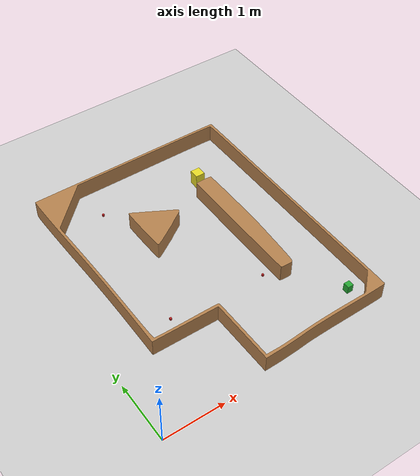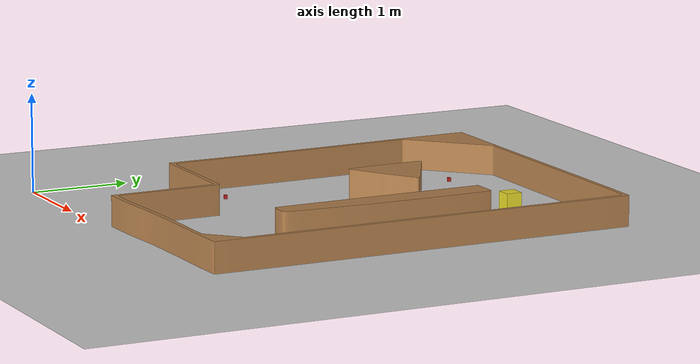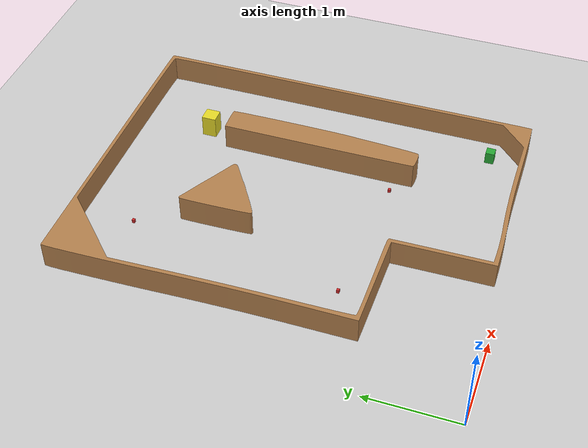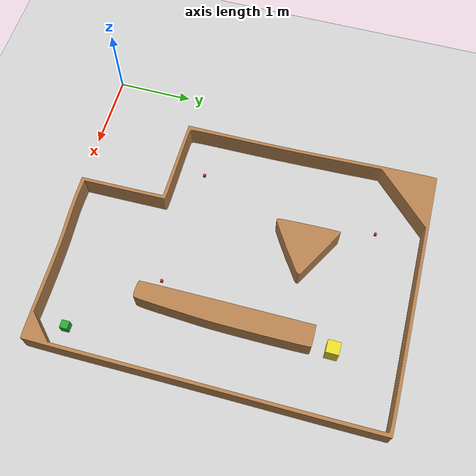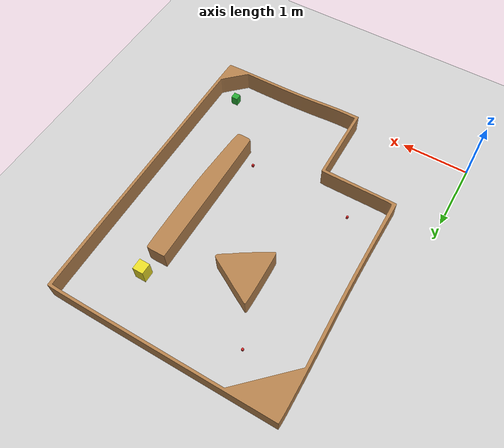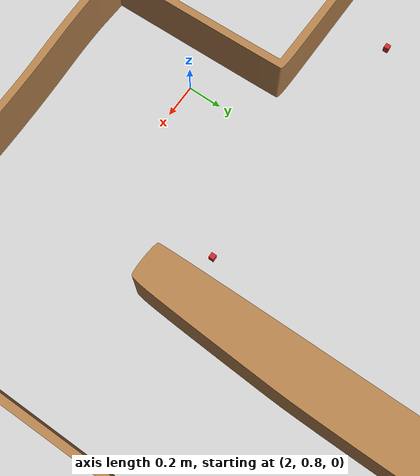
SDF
<sdf version='1.6'>
  <world name='default'>
    <!-- A global light source -->
    <include>
      <uri>model://sun</uri>
    </include>

    <!-- A ground plane -->
    <include>
      <uri>model://ground_plane</uri>
    </include>

    <physics type="ode">
      <real_time_update_rate>1000.0</real_time_update_rate>
      <max_step_size>0.001</max_step_size>
      <real_time_factor>1</real_time_factor>
      <ode>
        <solver>
          <type>quick</type>
          <iters>150</iters>
          <precon_iters>0</precon_iters>
          <sor>1.400000</sor>
          <use_dynamic_moi_rescaling>1</use_dynamic_moi_rescaling>
        </solver>
        <constraints>
          <cfm>0.00001</cfm>
          <erp>0.2</erp>
          <contact_max_correcting_vel>2000.000000</contact_max_correcting_vel>
          <contact_surface_layer>0.01000</contact_surface_layer>
        </constraints>
      </ode>
    </physics>

    <!-- Load world -->
    <include>
      <uri>model://battleground</uri>
      <pose>2.1 0.65 0.0 0 0 0</pose>
    </include>

    <!-- Map x offset 3.92m -->
    <!-- Map y offset 4.48m -->

    <include>
      <uri>model://button</uri>
      <pose>3.62 0.55 0.07 0 0 0</pose>
    </include>

    <include>
      <uri>model://box</uri>
      <pose>3.09 3.705 0.13 0 0 0</pose>
    </include>

    <include>
      <uri>model://rock</uri>
      <pose>1.42 3.93 0.03 0 0 0</pose>
    </include>

    <include>
      <uri>model://rock</uri>
      <pose>2.75 1.48 0.03 0 0 0</pose>
    </include>

    <include>
      <uri>model://rock</uri>
      <pose>1.16 1.57 0.03 0 0 0</pose>
    </include>

    <scene>
      <ambient>0.4 0.4 0.4 1</ambient>
      <background>0.7 0.7 0.7 1</background>
      <shadows>true</shadows>
    </scene>

    <gui fullscreen='0'>
      <camera name='user_camera'>
        <pose>0.0 0.0 17.0 0 1.5708 0</pose>
        <view_controller>orbit</view_controller>
      </camera>
    </gui>
  </world>
</sdf>

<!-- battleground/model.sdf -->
<sdf version='1.6'>
  <model name='battleground'>
    <link name='link_0'>
      <pose frame=''>0 0 0 0 -0 0</pose>
      <inertial>
        <mass>1</mass>
        <inertia>
          <ixx>0.166667</ixx>
          <ixy>0</ixy>
          <ixz>0</ixz>
          <iyy>0.166667</iyy>
          <iyz>0</iyz>
          <izz>0.166667</izz>
        </inertia>
      </inertial>
      <visual name='visual'>
        <pose frame=''>0 0 0 0 -0 0</pose>
        <geometry>
          <mesh>
            <uri>model://battleground/meshes/battleground.dae</uri>
            <scale>1 1 1</scale>
          </mesh>
        </geometry>
        <material>
          <lighting>1</lighting>
          <script>
            <uri>file://media/materials/scripts/gazebo.material</uri>
            <name>Gazebo/Wood</name>
          </script>
        </material>
        <cast_shadows>1</cast_shadows>
        <transparency>0</transparency>
      </visual>
      <collision name='collision'>
        <laser_retro>0</laser_retro>
        <max_contacts>10</max_contacts>
        <pose frame=''>0 0 0 0 -0 0</pose>
        <geometry>
          <mesh>
            <uri>model://battleground/meshes/battleground.dae</uri>
          </mesh>
        </geometry>
        <surface>
          <friction>
            <ode>
              <mu>1</mu>
              <mu2>1</mu2>
              <fdir1>0 0 0</fdir1>
              <slip1>0</slip1>
              <slip2>0</slip2>
            </ode>
            <torsional>
              <coefficient>1</coefficient>
              <patch_radius>0</patch_radius>
              <surface_radius>0</surface_radius>
              <use_patch_radius>1</use_patch_radius>
              <ode>
                <slip>0</slip>
              </ode>
            </torsional>
          </friction>
          <bounce>
            <restitution_coefficient>0</restitution_coefficient>
            <threshold>1e+06</threshold>
          </bounce>
          <contact>
            <collide_without_contact>0</collide_without_contact>
            <collide_without_contact_bitmask>1</collide_without_contact_bitmask>
            <collide_bitmask>1</collide_bitmask>
            <ode>
              <soft_cfm>0</soft_cfm>
              <soft_erp>0.2</soft_erp>
              <kp>1e+13</kp>
              <kd>1</kd>
              <max_vel>0.01</max_vel>
              <min_depth>0</min_depth>
            </ode>
            <bullet>
              <split_impulse>1</split_impulse>
              <split_impulse_penetration_threshold>-0.01</split_impulse_penetration_threshold>
              <soft_cfm>0</soft_cfm>
              <soft_erp>0.2</soft_erp>
              <kp>1e+13</kp>
              <kd>1</kd>
            </bullet>
          </contact>
        </surface>
      </collision>
    </link>
    <static>1</static>
    <allow_auto_disable>1</allow_auto_disable>
  </model>
</sdf>

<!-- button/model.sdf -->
<sdf version="1.4">
<model name="button">
  <pose>0 0 0.07 0 0 0</pose>
  <static>true</static>
    <link name="link">
      <inertial>
        <mass>1.0</mass>
        <inertia> <!-- inertias are tricky to compute -->
          <!-- http://gazebosim.org/tutorials?tut=inertia&cat=build_robot -->
          <ixx>0.083</ixx>       <!-- for a box: ixx = 0.083 * mass * (y*y + z*z) -->
          <ixy>0.0</ixy>         <!-- for a box: ixy = 0 -->
          <ixz>0.0</ixz>         <!-- for a box: ixz = 0 -->
          <iyy>0.083</iyy>       <!-- for a box: iyy = 0.083 * mass * (x*x + z*z) -->
          <iyz>0.0</iyz>         <!-- for a box: iyz = 0 -->
          <izz>0.083</izz>       <!-- for a box: izz = 0.083 * mass * (x*x + y*y) -->
        </inertia>
      </inertial>
      <collision name="collision">
        <geometry>
          <box>
            <size>0.1 0.1 0.14</size>
          </box>
        </geometry>
      </collision>
      <visual name="visual">
        <geometry>
          <box>
            <size>0.1 0.1 0.14</size>
          </box>
        </geometry>
        <material>
          <script>
            <uri>file://media/materials/scripts/gazebo.material</uri>
            <name>Gazebo/Green</name>
          </script>
        </material>
      </visual>
    </link>
  </model>
</sdf>

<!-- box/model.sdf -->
<sdf version="1.4">
<model name="rock">
  <pose>0 0 0.04 0 0 0</pose>
  <static>false</static>
    <link name="link">
      <inertial>
        <mass>0.1</mass>
        <inertia> <!-- inertias are tricky to compute -->
          <!-- http://gazebosim.org/tutorials?tut=inertia&cat=build_robot -->
          <ixx>0.083</ixx>       <!-- for a box: ixx = 0.083 * mass * (y*y + z*z) -->
          <ixy>0.0</ixy>         <!-- for a box: ixy = 0 -->
          <ixz>0.0</ixz>         <!-- for a box: ixz = 0 -->
          <iyy>0.083</iyy>       <!-- for a box: iyy = 0.083 * mass * (x*x + z*z) -->
          <iyz>0.0</iyz>         <!-- for a box: iyz = 0 -->
          <izz>0.083</izz>       <!-- for a box: izz = 0.083 * mass * (x*x + y*y) -->
        </inertia>
      </inertial>
      <collision name="collision">
        <geometry>
          <box>
            <size>0.16 0.16 0.25</size>
          </box>
        </geometry>
      </collision>
      <visual name="visual">
        <geometry>
          <box>
            <size>0.16 0.16 0.25</size>
          </box>
        </geometry>
        <material>
          <script>
            <uri>file://media/materials/scripts/gazebo.material</uri>
            <name>Gazebo/Yellow</name>
          </script>
        </material>
      </visual>
    </link>
  </model>
</sdf>

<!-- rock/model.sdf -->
<sdf version="1.4">
<model name="rock">
  <pose>0 0 0.04 0 0 0</pose>
  <static>false</static>
    <link name="link">
      <inertial>
        <mass>0.1</mass>
        <inertia> <!-- inertias are tricky to compute -->
          <!-- http://gazebosim.org/tutorials?tut=inertia&cat=build_robot -->
          <ixx>0.083</ixx>       <!-- for a box: ixx = 0.083 * mass * (y*y + z*z) -->
          <ixy>0.0</ixy>         <!-- for a box: ixy = 0 -->
          <ixz>0.0</ixz>         <!-- for a box: ixz = 0 -->
          <iyy>0.083</iyy>       <!-- for a box: iyy = 0.083 * mass * (x*x + z*z) -->
          <iyz>0.0</iyz>         <!-- for a box: iyz = 0 -->
          <izz>0.083</izz>       <!-- for a box: izz = 0.083 * mass * (x*x + y*y) -->
        </inertia>
      </inertial>
      <collision name="collision">
        <geometry>
          <box>
            <size>0.03 0.03 0.04</size>
          </box>
        </geometry>
      </collision>
      <visual name="visual">
        <geometry>
          <box>
            <size>0.03 0.03 0.04</size>
          </box>
        </geometry>
        <material>
          <script>
            <uri>file://media/materials/scripts/gazebo.material</uri>
            <name>Gazebo/Red</name>
          </script>
        </material>
      </visual>
    </link>
  </model>
</sdf>
